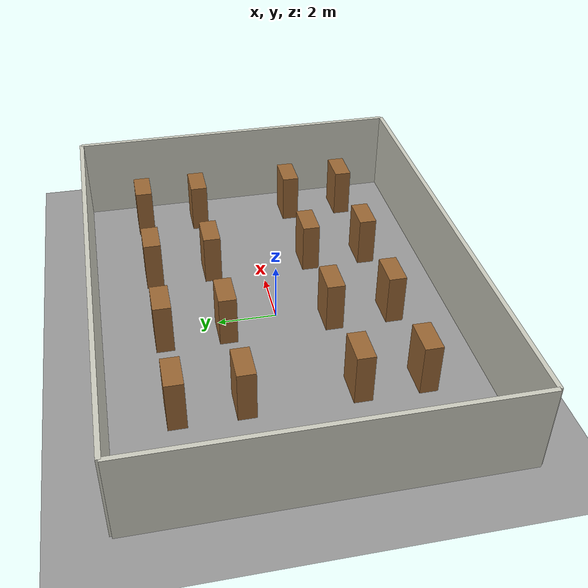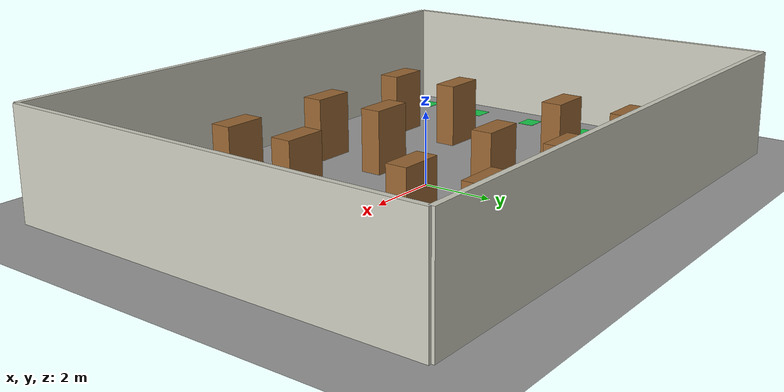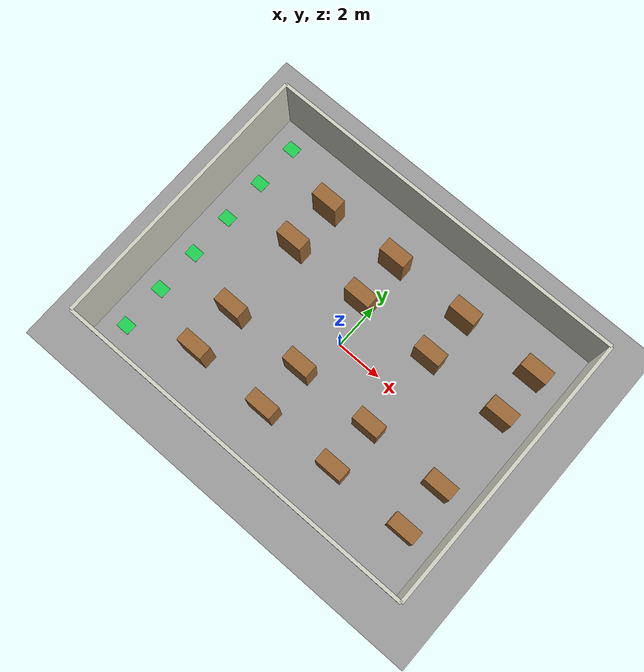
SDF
<?xml version="1.0" ?>
<sdf version="1.9">
  <world name="warehouse">

    <physics name="1ms" type="ode">
      <max_step_size>0.001</max_step_size>
      <real_time_factor>1.0</real_time_factor>
    </physics>

    <plugin filename="gz-sim-physics-system" name="gz::sim::systems::Physics"/>
    <plugin filename="gz-sim-user-commands-system" name="gz::sim::systems::UserCommands"/>
    <plugin filename="gz-sim-scene-broadcaster-system" name="gz::sim::systems::SceneBroadcaster"/>
    <plugin filename="gz-sim-sensors-system" name="gz::sim::systems::Sensors">
      <render_engine>ogre2</render_engine>
    </plugin>
    <plugin filename="gz-sim-imu-system" name="gz::sim::systems::Imu"/>

    <light type="directional" name="sun">
      <cast_shadows>true</cast_shadows>
      <pose>0 0 10 0 0 0</pose>
      <diffuse>0.9 0.9 0.9 1</diffuse>
      <specular>0.3 0.3 0.3 1</specular>
      <attenuation>
        <range>1000</range>
        <constant>0.9</constant>
        <linear>0.01</linear>
        <quadratic>0.001</quadratic>
      </attenuation>
      <direction>-0.4 0.2 -0.9</direction>
    </light>

    <model name="ground_plane">
      <static>true</static>
      <link name="link">
        <collision name="collision">
          <geometry><plane><normal>0 0 1</normal><size>20 16</size></plane></geometry>
        </collision>
        <visual name="visual">
          <geometry><plane><normal>0 0 1</normal><size>20 16</size></plane></geometry>
          <material>
            <ambient>0.5 0.5 0.5 1</ambient>
            <diffuse>0.6 0.6 0.6 1</diffuse>
          </material>
        </visual>
      </link>
    </model>

    <model name="wall_north">
      <static>true</static>
      <pose>0 6 1.5 0 0 0</pose>
      <link name="link">
        <collision name="collision"><geometry><box><size>16 0.15 3</size></box></geometry></collision>
        <visual name="visual">
          <geometry><box><size>16 0.15 3</size></box></geometry>
          <material><ambient>0.8 0.8 0.75 1</ambient><diffuse>0.8 0.8 0.75 1</diffuse></material>
        </visual>
      </link>
    </model>

    <model name="wall_south">
      <static>true</static>
      <pose>0 -6 1.5 0 0 0</pose>
      <link name="link">
        <collision name="collision"><geometry><box><size>16 0.15 3</size></box></geometry></collision>
        <visual name="visual">
          <geometry><box><size>16 0.15 3</size></box></geometry>
          <material><ambient>0.8 0.8 0.75 1</ambient><diffuse>0.8 0.8 0.75 1</diffuse></material>
        </visual>
      </link>
    </model>

    <model name="wall_east">
      <static>true</static>
      <pose>8 0 1.5 0 0 1.5708</pose>
      <link name="link">
        <collision name="collision"><geometry><box><size>12 0.15 3</size></box></geometry></collision>
        <visual name="visual">
          <geometry><box><size>12 0.15 3</size></box></geometry>
          <material><ambient>0.8 0.8 0.75 1</ambient><diffuse>0.8 0.8 0.75 1</diffuse></material>
        </visual>
      </link>
    </model>

    <model name="wall_west">
      <static>true</static>
      <pose>-8 0 1.5 0 0 1.5708</pose>
      <link name="link">
        <collision name="collision"><geometry><box><size>12 0.15 3</size></box></geometry></collision>
        <visual name="visual">
          <geometry><box><size>12 0.15 3</size></box></geometry>
          <material><ambient>0.8 0.8 0.75 1</ambient><diffuse>0.8 0.8 0.75 1</diffuse></material>
        </visual>
      </link>
    </model>

    <model name="charging_bay_1">
      <static>true</static>
      <pose>-7.0 -5 0.006 0 0 0</pose>
      <link name="link">
        <visual name="visual">
          <geometry><box><size>0.6 0.5 0.01</size></box></geometry>
          <material><ambient>0.1 0.7 0.3 1</ambient><diffuse>0.1 0.8 0.3 1</diffuse><emissive>0.02 0.15 0.05 1</emissive></material>
        </visual>
      </link>
    </model>

    <model name="charging_bay_2">
      <static>true</static>
      <pose>-7.0 -3 0.006 0 0 0</pose>
      <link name="link">
        <visual name="visual">
          <geometry><box><size>0.6 0.5 0.01</size></box></geometry>
          <material><ambient>0.1 0.7 0.3 1</ambient><diffuse>0.1 0.8 0.3 1</diffuse><emissive>0.02 0.15 0.05 1</emissive></material>
        </visual>
      </link>
    </model>

    <model name="charging_bay_3">
      <static>true</static>
      <pose>-7.0 -1 0.006 0 0 0</pose>
      <link name="link">
        <visual name="visual">
          <geometry><box><size>0.6 0.5 0.01</size></box></geometry>
          <material><ambient>0.1 0.7 0.3 1</ambient><diffuse>0.1 0.8 0.3 1</diffuse><emissive>0.02 0.15 0.05 1</emissive></material>
        </visual>
      </link>
    </model>

    <model name="charging_bay_4">
      <static>true</static>
      <pose>-7.0 1 0.006 0 0 0</pose>
      <link name="link">
        <visual name="visual">
          <geometry><box><size>0.6 0.5 0.01</size></box></geometry>
          <material><ambient>0.1 0.7 0.3 1</ambient><diffuse>0.1 0.8 0.3 1</diffuse><emissive>0.02 0.15 0.05 1</emissive></material>
        </visual>
      </link>
    </model>

    <model name="charging_bay_5">
      <static>true</static>
      <pose>-7.0 3 0.006 0 0 0</pose>
      <link name="link">
        <visual name="visual">
          <geometry><box><size>0.6 0.5 0.01</size></box></geometry>
          <material><ambient>0.1 0.7 0.3 1</ambient><diffuse>0.1 0.8 0.3 1</diffuse><emissive>0.02 0.15 0.05 1</emissive></material>
        </visual>
      </link>
    </model>

    <model name="charging_bay_6">
      <static>true</static>
      <pose>-7.0 5 0.006 0 0 0</pose>
      <link name="link">
        <visual name="visual">
          <geometry><box><size>0.6 0.5 0.01</size></box></geometry>
          <material><ambient>0.1 0.7 0.3 1</ambient><diffuse>0.1 0.8 0.3 1</diffuse><emissive>0.02 0.15 0.05 1</emissive></material>
        </visual>
      </link>
    </model>

    <model name="shelf_north_1_1">
      <static>true</static>
      <pose>-4.0 1.8 0.9 0 0 0</pose>
      <link name="link">
        <collision name="collision"><geometry><box><size>1.2 0.6 1.8</size></box></geometry></collision>
        <visual name="visual">
          <geometry><box><size>1.2 0.6 1.8</size></box></geometry>
          <material><ambient>0.6 0.4 0.2 1</ambient><diffuse>0.6 0.4 0.2 1</diffuse></material>
        </visual>
      </link>
    </model>

    <model name="shelf_north_1_2">
      <static>true</static>
      <pose>-0.5 1.8 0.9 0 0 0</pose>
      <link name="link">
        <collision name="collision"><geometry><box><size>1.2 0.6 1.8</size></box></geometry></collision>
        <visual name="visual">
          <geometry><box><size>1.2 0.6 1.8</size></box></geometry>
          <material><ambient>0.6 0.4 0.2 1</ambient><diffuse>0.6 0.4 0.2 1</diffuse></material>
        </visual>
      </link>
    </model>

    <model name="shelf_north_1_3">
      <static>true</static>
      <pose>3.0 1.8 0.9 0 0 0</pose>
      <link name="link">
        <collision name="collision"><geometry><box><size>1.2 0.6 1.8</size></box></geometry></collision>
        <visual name="visual">
          <geometry><box><size>1.2 0.6 1.8</size></box></geometry>
          <material><ambient>0.6 0.4 0.2 1</ambient><diffuse>0.6 0.4 0.2 1</diffuse></material>
        </visual>
      </link>
    </model>

    <model name="shelf_north_1_4">
      <static>true</static>
      <pose>6.5 1.8 0.9 0 0 0</pose>
      <link name="link">
        <collision name="collision"><geometry><box><size>1.2 0.6 1.8</size></box></geometry></collision>
        <visual name="visual">
          <geometry><box><size>1.2 0.6 1.8</size></box></geometry>
          <material><ambient>0.6 0.4 0.2 1</ambient><diffuse>0.6 0.4 0.2 1</diffuse></material>
        </visual>
      </link>
    </model>

    <model name="shelf_north_2_1">
      <static>true</static>
      <pose>-4.0 3.9 0.9 0 0 0</pose>
      <link name="link">
        <collision name="collision"><geometry><box><size>1.2 0.6 1.8</size></box></geometry></collision>
        <visual name="visual">
          <geometry><box><size>1.2 0.6 1.8</size></box></geometry>
          <material><ambient>0.6 0.4 0.2 1</ambient><diffuse>0.6 0.4 0.2 1</diffuse></material>
        </visual>
      </link>
    </model>

    <model name="shelf_north_2_2">
      <static>true</static>
      <pose>-0.5 3.9 0.9 0 0 0</pose>
      <link name="link">
        <collision name="collision"><geometry><box><size>1.2 0.6 1.8</size></box></geometry></collision>
        <visual name="visual">
          <geometry><box><size>1.2 0.6 1.8</size></box></geometry>
          <material><ambient>0.6 0.4 0.2 1</ambient><diffuse>0.6 0.4 0.2 1</diffuse></material>
        </visual>
      </link>
    </model>

    <model name="shelf_north_2_3">
      <static>true</static>
      <pose>3.0 3.9 0.9 0 0 0</pose>
      <link name="link">
        <collision name="collision"><geometry><box><size>1.2 0.6 1.8</size></box></geometry></collision>
        <visual name="visual">
          <geometry><box><size>1.2 0.6 1.8</size></box></geometry>
          <material><ambient>0.6 0.4 0.2 1</ambient><diffuse>0.6 0.4 0.2 1</diffuse></material>
        </visual>
      </link>
    </model>

    <model name="shelf_north_2_4">
      <static>true</static>
      <pose>6.5 3.9 0.9 0 0 0</pose>
      <link name="link">
        <collision name="collision"><geometry><box><size>1.2 0.6 1.8</size></box></geometry></collision>
        <visual name="visual">
          <geometry><box><size>1.2 0.6 1.8</size></box></geometry>
          <material><ambient>0.6 0.4 0.2 1</ambient><diffuse>0.6 0.4 0.2 1</diffuse></material>
        </visual>
      </link>
    </model>

    <model name="shelf_south_1_1">
      <static>true</static>
      <pose>-4.0 -1.8 0.9 0 0 0</pose>
      <link name="link">
        <collision name="collision"><geometry><box><size>1.2 0.6 1.8</size></box></geometry></collision>
        <visual name="visual">
          <geometry><box><size>1.2 0.6 1.8</size></box></geometry>
          <material><ambient>0.6 0.4 0.2 1</ambient><diffuse>0.6 0.4 0.2 1</diffuse></material>
        </visual>
      </link>
    </model>

    <model name="shelf_south_1_2">
      <static>true</static>
      <pose>-0.5 -1.8 0.9 0 0 0</pose>
      <link name="link">
        <collision name="collision"><geometry><box><size>1.2 0.6 1.8</size></box></geometry></collision>
        <visual name="visual">
          <geometry><box><size>1.2 0.6 1.8</size></box></geometry>
          <material><ambient>0.6 0.4 0.2 1</ambient><diffuse>0.6 0.4 0.2 1</diffuse></material>
        </visual>
      </link>
    </model>

    <model name="shelf_south_1_3">
      <static>true</static>
      <pose>3.0 -1.8 0.9 0 0 0</pose>
      <link name="link">
        <collision name="collision"><geometry><box><size>1.2 0.6 1.8</size></box></geometry></collision>
        <visual name="visual">
          <geometry><box><size>1.2 0.6 1.8</size></box></geometry>
          <material><ambient>0.6 0.4 0.2 1</ambient><diffuse>0.6 0.4 0.2 1</diffuse></material>
        </visual>
      </link>
    </model>

    <model name="shelf_south_1_4">
      <static>true</static>
      <pose>6.5 -1.8 0.9 0 0 0</pose>
      <link name="link">
        <collision name="collision"><geometry><box><size>1.2 0.6 1.8</size></box></geometry></collision>
        <visual name="visual">
          <geometry><box><size>1.2 0.6 1.8</size></box></geometry>
          <material><ambient>0.6 0.4 0.2 1</ambient><diffuse>0.6 0.4 0.2 1</diffuse></material>
        </visual>
      </link>
    </model>

    <model name="shelf_south_2_1">
      <static>true</static>
      <pose>-4.0 -3.9 0.9 0 0 0</pose>
      <link name="link">
        <collision name="collision"><geometry><box><size>1.2 0.6 1.8</size></box></geometry></collision>
        <visual name="visual">
          <geometry><box><size>1.2 0.6 1.8</size></box></geometry>
          <material><ambient>0.6 0.4 0.2 1</ambient><diffuse>0.6 0.4 0.2 1</diffuse></material>
        </visual>
      </link>
    </model>

    <model name="shelf_south_2_2">
      <static>true</static>
      <pose>-0.5 -3.9 0.9 0 0 0</pose>
      <link name="link">
        <collision name="collision"><geometry><box><size>1.2 0.6 1.8</size></box></geometry></collision>
        <visual name="visual">
          <geometry><box><size>1.2 0.6 1.8</size></box></geometry>
          <material><ambient>0.6 0.4 0.2 1</ambient><diffuse>0.6 0.4 0.2 1</diffuse></material>
        </visual>
      </link>
    </model>

    <model name="shelf_south_2_3">
      <static>true</static>
      <pose>3.0 -3.9 0.9 0 0 0</pose>
      <link name="link">
        <collision name="collision"><geometry><box><size>1.2 0.6 1.8</size></box></geometry></collision>
        <visual name="visual">
          <geometry><box><size>1.2 0.6 1.8</size></box></geometry>
          <material><ambient>0.6 0.4 0.2 1</ambient><diffuse>0.6 0.4 0.2 1</diffuse></material>
        </visual>
      </link>
    </model>

    <model name="shelf_south_2_4">
      <static>true</static>
      <pose>6.5 -3.9 0.9 0 0 0</pose>
      <link name="link">
        <collision name="collision"><geometry><box><size>1.2 0.6 1.8</size></box></geometry></collision>
        <visual name="visual">
          <geometry><box><size>1.2 0.6 1.8</size></box></geometry>
          <material><ambient>0.6 0.4 0.2 1</ambient><diffuse>0.6 0.4 0.2 1</diffuse></material>
        </visual>
      </link>
    </model>

  </world>
</sdf>
